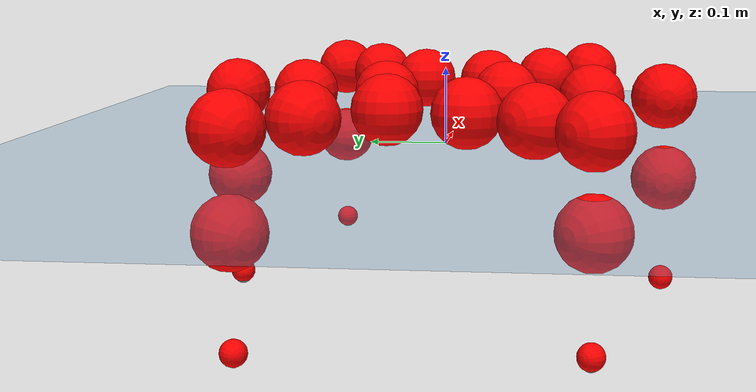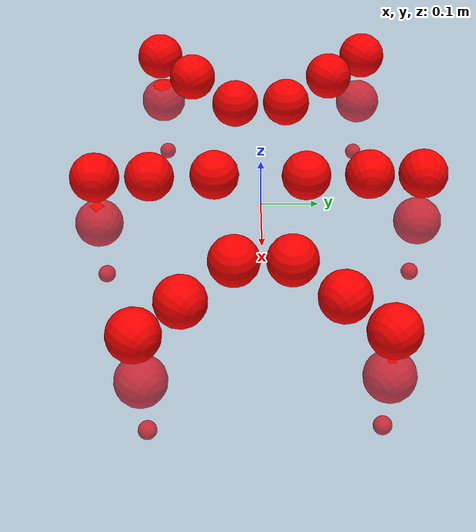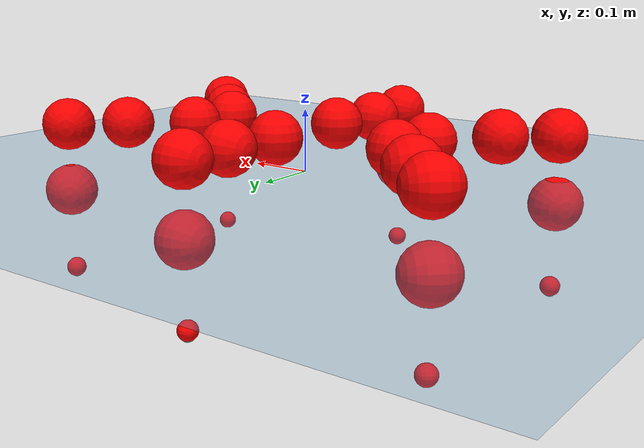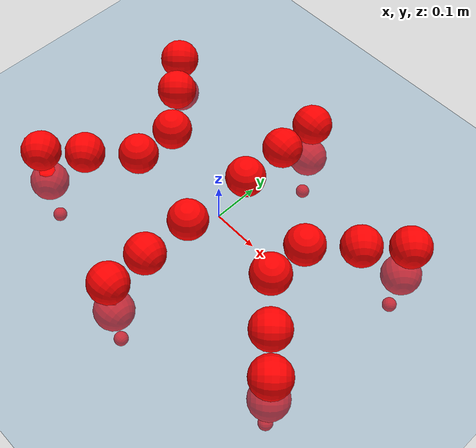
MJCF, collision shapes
<mujoco model="Golem">
  <compiler angle="radian" assetdir="assets" balanceinertia="true" inertiafromgeom="false"/>

  <option timestep="0.005" density="1.2" viscosity="2e-05"/>

  <size nkey="1"/>

  <visual>
    <quality shadowsize="8192"/>
    <map shadowclip="0.5"/>
  </visual>

  <default>
    <default class="/">
      <joint armature="0.01" damping="0.01" frictionloss="0.01"/>
      <geom contype="0" conaffinity="0" group="1" solref="-1000 -80"/>
      <site size="0.01 0.005 0.005" group="5"/>
      <general forcelimited="true" biastype="affine" gainprm="25" biasprm="0 -25 -0.5"/>
      <default class="visual">
        <geom type="mesh" group="2"/>
      </default>
      <default class="collision">
        <geom group="3"/>
      </default>
      <default class="foot">
        <geom size="0.01 0 0" condim="6" group="4" priority="1" solimp="0.015 1 0.01"/>
      </default>
      <default class="reward_collision_sphere">
        <geom group="5" rgba="1 0 0 1"/>
      </default>
    </default>
  </default>

  <asset>
    <texture type="skybox" colorspace="auto" name="//unnamed_texture_0" builtin="gradient" rgb1="0.95 0.95 0.95" rgb2="0.95 0.95 0.95" width="100" height="600"/>
    <texture type="2d" colorspace="auto" name="texplane" builtin="checker" rgb1="0.345 0.575 0.748" rgb2="0.345 0.575 0.748" markrgb="1 1 1" width="512" height="512"/>
    <material name="MatPlane" class="/" texture="texplane" texuniform="true" texrepeat="2 2" specular="0.9"/>
    <mesh name="body" class="/" file="body.stl" scale="0.001 0.001 0.001"/>
    <mesh name="coxa" class="/" file="coxa.stl" scale="0.001 0.001 0.001"/>
    <mesh name="femur" class="/" file="femur.stl" scale="0.001 0.001 0.001"/>
    <mesh name="tibia" class="/" file="tibia.stl" scale="0.001 0.001 0.001"/>
    <mesh name="tarsus" class="/" file="tarsus.stl" scale="0.001 0.001 0.001"/>
  </asset>

  <worldbody>
    <geom name="floor" class="/" size="100 100 0.125" type="plane" group="0" material="MatPlane"/>
    <light name="toplight_shadow" class="/" pos="0 0 5" dir="0.0990148 0.0990148 -0.990148" type="directional" ambient="0.04 0.04 0.04" diffuse="0.55 0.55 0.55" specular="0.12 0.12 0.12"/>
    <light name="toplight_fill" class="/" pos="0 0 5" dir="0.0990148 0.0990148 -0.990148" type="directional" castshadow="false" ambient="0.04 0.04 0.04" diffuse="0.3 0.3 0.3" specular="0.08 0.08 0.08"/>
    <body name="trunk" pos="-0.00154876 9.83856e-05 -0.000485731" quat="1 0.000221693 2.54693e-06 -0.000357469">
      <inertial pos="0.001111 0.000771447 -0.00483404" quat="0.999913 -0.00443007 -0.00713403 -0.0102145" mass="4.39398" diaginertia="0.0315557 0.00515222 0.0129145"/>
      <joint name="//unnamed_joint_0" type="free"/>
      <geom name="//unnamed_geom_1" class="/" pos="0 0 0.0674514" quat="1 0 0 0" type="mesh" rgba="0.9 0.9 0.9 1" mesh="body"/>
      <site name="imu" class="/" pos="0.163872 0.0037271 0.104219" size="0.0106232"/>
      <camera name="track" class="/" pos="0 -1.7545 0" quat="0.707107 0.707107 0 0" mode="trackcom"/>
      <camera name="ego_camera" class="/" pos="0.16325 0 0.105393" quat="-0.5 -0.5 0.5 0.5"/>
      <body name="coxa_RR" pos="-0.223341 -0.0706894 0.0670432" quat="0.382723 1.9902e-05 0.000319877 -0.923863">
        <inertial pos="0.000545588 -0.000237851 0.000469386" quat="0.99998 0.00419528 -0.00313748 -0.00363075" mass="0.234491" diaginertia="0.031399 0.00503334 0.0127136"/>
        <joint name="coxa_joint_RR" class="/" pos="0 0 0" axis="-0.000917645 -0.000174592 -1" range="-3.13756 3.19191" armature="0.0105191" damping="0.0141001" frictionloss="0.0101811"/>
        <geom name="//unnamed_geom_2" class="/" type="mesh" rgba="0.2 0.2 0.2 1" mesh="coxa"/>
        <geom name="//unnamed_geom_3" class="reward_collision_sphere" size="0.0424927" pos="-0.0376732 0 0"/>
        <body name="femur_RR" pos="0.0744583 0.00231014 0.00263793" quat="0.50009 -0.500147 0.499629 0.500134">
          <inertial pos="0.000300787 0.00258106 0.0026408" quat="0.999987 -0.00185128 0.00423554 -0.00212255" mass="0.239787" diaginertia="0.0321815 0.00518461 0.0135217"/>
          <joint name="femur_joint_RR" class="/" pos="0 0 0" axis="-0.00114543 -0.00388967 -0.999992" range="-3.15883 3.13715" armature="0.0101802" damping="0.0138084" frictionloss="0.012033"/>
          <geom name="//unnamed_geom_4" class="/" type="mesh" rgba="0.9 0.9 0.9 1" mesh="femur"/>
          <geom name="//unnamed_geom_5" class="reward_collision_sphere" size="0.0424927"/>
          <body name="tibia_RR" pos="0.00065883 -0.0928479 -0.0024633" quat="2.04578e-05 1 3.34249e-05 8.90485e-05">
            <inertial pos="0.000624483 -0.00225432 0.000871919" quat="1 0.000304992 -0.000123927 -0.000391733" mass="0.238891" diaginertia="0.0312718 0.00520127 0.0129638"/>
            <joint name="tibia_joint_RR" class="/" pos="0 0 0" axis="-0.00101896 0.0002931 0.999999" range="-3.14073 3.13652" armature="0.0104756" damping="0.0197463" frictionloss="0.00997081"/>
            <geom name="//unnamed_geom_6" class="/" type="mesh" rgba="0.2 0.2 0.2 1" mesh="tibia"/>
            <geom name="//unnamed_geom_7" class="reward_collision_sphere" size="0.0424927"/>
            <body name="tarsus_RR" pos="0.107522 0.00063519 0.000196782" quat="1 -1.53367e-05 -3.47962e-05 5.54161e-05">
              <inertial pos="0.0746416 -0.000395563 -0.00015933" quat="0.500206 0.502898 0.497692 0.49919" mass="0.246616" diaginertia="0.0323965 0.00528807 0.0129205"/>
              <joint name="tarsus_joint_RR" class="/" pos="0 0 0" axis="0.00162162 0.000299971 0.999999" range="-3.19297 3.19098" armature="0.010778" damping="0.00277688" frictionloss="0.0108865"/>
              <geom name="//unnamed_geom_8" class="/" type="mesh" rgba="0.9 0.9 0.9 1" mesh="tarsus"/>
              <geom name="foot_1" class="foot" size="0.0112227" pos="0.140647 0 0" quat="0 -0.707107 0 0.707107"/>
              <geom name="//unnamed_geom_10" class="reward_collision_sphere" size="0.0424927"/>
              <geom name="//unnamed_geom_11" class="reward_collision_sphere" size="0.0159347" pos="0.134996 0 0"/>
              <site name="foot_1" class="foot" pos="0.140647 0 0" quat="0 -0.707107 0 0.707107" size="0.0106232"/>
            </body>
          </body>
        </body>
      </body>
      <body name="coxa_RM" pos="-0.00274762 -0.117341 0.0678863" quat="0.707113 3.04008e-05 1.63916e-06 -0.707101">
        <inertial pos="0.000340868 -0.00087539 0.0011653" quat="0.99991 -0.00809999 0.00342406 -0.0100921" mass="0.244398" diaginertia="0.0317064 0.00519253 0.0132949"/>
        <joint name="coxa_joint_RM" class="/" pos="0 0 0" axis="0.00329838 0.00179645 -0.999993" range="-3.11946 3.12267" armature="0.0104484" damping="0.00739979" frictionloss="0.0108596"/>
        <geom name="//unnamed_geom_12" class="/" type="mesh" rgba="0.2 0.2 0.2 1" mesh="coxa"/>
        <geom name="//unnamed_geom_13" class="reward_collision_sphere" size="0.0424927" pos="-0.0376732 0 0"/>
        <body name="femur_RM" pos="0.0736884 -0.000490904 -0.00327613" quat="0.50093 -0.500257 0.499344 0.499467">
          <inertial pos="-0.00268256 -0.000943817 -0.002655" quat="0.999999 -0.000900232 0.000787207 -0.000140554" mass="0.247302" diaginertia="0.0314421 0.00521332 0.0130446"/>
          <joint name="femur_joint_RM" class="/" pos="0 0 0" axis="0.00291492 0.00208587 -0.999994" range="-3.16099 3.19178" armature="0.010389" damping="0.0130795" frictionloss="0.00927397"/>
          <geom name="//unnamed_geom_14" class="/" type="mesh" rgba="0.9 0.9 0.9 1" mesh="femur"/>
          <geom name="//unnamed_geom_15" class="reward_collision_sphere" size="0.0424927"/>
          <body name="tibia_RM" pos="-0.00157886 -0.0932132 0.00243113" quat="-0.000114488 1 4.95209e-05 -0.00011698">
            <inertial pos="-0.000232609 -0.00131056 -1.97024e-05" quat="1 -0.000201635 0.000119914 0.000305111" mass="0.239188" diaginertia="0.0316793 0.00522491 0.0128622"/>
            <joint name="tibia_joint_RM" class="/" pos="0 0 0" axis="-0.0124215 0.00188069 0.999921" stiffness="7.09602e-05" range="-3.14949 3.08992" armature="0.0111304" damping="0" frictionloss="0.0106341"/>
            <geom name="//unnamed_geom_16" class="/" type="mesh" rgba="0.2 0.2 0.2 1" mesh="tibia"/>
            <geom name="//unnamed_geom_17" class="reward_collision_sphere" size="0.0424927"/>
            <body name="tarsus_RM" pos="0.107276 0.00216251 -0.00233061" quat="1 3.82516e-05 0.000379407 4.53656e-05">
              <inertial pos="0.0765854 0.000586371 0.00182805" quat="0.501051 0.507461 0.496936 0.494455" mass="0.238008" diaginertia="0.0314101 0.00515594 0.012455"/>
              <joint name="tarsus_joint_RM" class="/" pos="0 0 0" axis="-0.0026036 0.00114579 0.999996" range="-3.18929 3.08506" armature="0.0105525" damping="0.00414767" frictionloss="0.0111838"/>
              <geom name="//unnamed_geom_18" class="/" type="mesh" rgba="0.9 0.9 0.9 1" mesh="tarsus"/>
              <geom name="foot_2" class="foot" size="0.0103813" pos="0.140647 0 0" quat="0 -0.707107 0 0.707107"/>
              <geom name="//unnamed_geom_20" class="reward_collision_sphere" size="0.0424927"/>
              <geom name="//unnamed_geom_21" class="reward_collision_sphere" size="0.0159347" pos="0.134996 0 0"/>
              <site name="foot_2" class="foot" pos="0.140647 0 0" quat="0 -0.707107 0 0.707107" size="0.0106232"/>
            </body>
          </body>
        </body>
      </body>
      <body name="coxa_RF" pos="0.221927 -0.072581 0.0658205" quat="0.923892 0.000216415 -9.83764e-05 -0.382653">
        <inertial pos="-0.000296445 -0.00260029 -0.000745876" quat="0.999989 -0.000358184 -0.00339185 -0.00328392" mass="0.245467" diaginertia="0.0318762 0.0051871 0.0129771"/>
        <joint name="coxa_joint_RF" class="/" pos="0 0 0" axis="0.000292275 -0.00160834 -0.999999" range="-3.13986 3.17083" armature="0.0107163" damping="0" frictionloss="0.0107021"/>
        <geom name="//unnamed_geom_22" class="/" type="mesh" rgba="0.2 0.2 0.2 1" mesh="coxa"/>
        <geom name="//unnamed_geom_23" class="reward_collision_sphere" size="0.0424927" pos="-0.0376732 0 0"/>
        <body name="femur_RF" pos="0.0768026 -0.000598085 -0.00258312" quat="0.500067 -0.500005 0.499999 0.499929">
          <inertial pos="-0.000636232 -0.000181718 0.0022683" quat="0.999987 -0.00204101 0.00302778 -0.00346219" mass="0.235988" diaginertia="0.0314487 0.00506382 0.0130205"/>
          <joint name="femur_joint_RF" class="/" pos="0 0 0" axis="-0.000752846 0.00133885 -0.999999" range="-3.08727 3.11776" armature="0.0104191" damping="0.0110713" frictionloss="0.00962183"/>
          <geom name="//unnamed_geom_24" class="/" type="mesh" rgba="0.9 0.9 0.9 1" mesh="femur"/>
          <geom name="//unnamed_geom_25" class="reward_collision_sphere" size="0.0424927"/>
          <body name="tibia_RF" pos="-0.00296017 -0.0936947 -0.000324893" quat="5.32133e-05 1 0.000132297 1.36541e-05">
            <inertial pos="0.00177304 -0.000190544 -6.82823e-05" quat="0.99991 -0.00926934 -0.00866038 -0.00426786" mass="0.245139" diaginertia="0.0306244 0.00514819 0.0131006"/>
            <joint name="tibia_joint_RF" class="/" pos="0 0 0" axis="-0.00723685 0.00432058 0.999964" range="-3.1406 3.13629" armature="0.010101" damping="0.00409536" frictionloss="0.0105276"/>
            <geom name="//unnamed_geom_26" class="/" type="mesh" rgba="0.2 0.2 0.2 1" mesh="tibia"/>
            <geom name="//unnamed_geom_27" class="reward_collision_sphere" size="0.0424927"/>
            <body name="tarsus_RF" pos="0.111883 -0.00111685 -0.00221397" quat="1 0.00029586 -0.000139878 -0.000248685">
              <inertial pos="0.0755281 -0.00240778 -0.000483101" quat="0.503375 0.4999 0.498171 0.498538" mass="0.231097" diaginertia="0.031013 0.00503543 0.0130402"/>
              <joint name="tarsus_joint_RF" class="/" pos="0 0 0" axis="0.00919724 0.00949896 0.999913" range="-3.18013 3.13828" armature="0.0106766" damping="0.0202866" frictionloss="0.0111212"/>
              <geom name="//unnamed_geom_28" class="/" type="mesh" rgba="0.9 0.9 0.9 1" mesh="tarsus"/>
              <geom name="foot_3" class="foot" size="0.0102409" pos="0.140647 0 0" quat="0 -0.707107 0 0.707107"/>
              <geom name="//unnamed_geom_30" class="reward_collision_sphere" size="0.0424927"/>
              <geom name="//unnamed_geom_31" class="reward_collision_sphere" size="0.0159347" pos="0.134996 0 0"/>
              <site name="foot_3" class="foot" pos="0.140647 0 0" quat="0 -0.707107 0 0.707107" size="0.0106232"/>
            </body>
          </body>
        </body>
      </body>
      <body name="coxa_LR" pos="-0.222554 0.0760043 0.0697565" quat="0.382711 -1.49884e-05 -5.93383e-05 0.923868">
        <inertial pos="0.000897982 0.000624028 0.00287377" quat="1 -8.38364e-05 -2.37897e-05 -5.28112e-05" mass="0.240654" diaginertia="0.0308923 0.00513175 0.0124604"/>
        <joint name="coxa_joint_LR" class="/" pos="0 0 0" axis="-0.00259145 -0.000158792 -0.999997" range="-3.14298 3.12421" armature="0.0107383" damping="0" frictionloss="0.00921092"/>
        <geom name="//unnamed_geom_32" class="/" type="mesh" rgba="0.2 0.2 0.2 1" mesh="coxa"/>
        <geom name="//unnamed_geom_33" class="reward_collision_sphere" size="0.0424927" pos="-0.0376732 0 0"/>
        <body name="femur_LR" pos="0.0758805 -0.00323357 -0.000227364" quat="0.500438 -0.500002 0.499829 0.499731">
          <inertial pos="0.00245748 -0.000156008 0.00168681" quat="0.999995 0.00242433 0.000659697 0.0019109" mass="0.231292" diaginertia="0.0310103 0.00517396 0.0130145"/>
          <joint name="femur_joint_LR" class="/" pos="0 0 0" axis="0.00243274 -0.00322079 0.999992" range="-3.19371 3.08682" armature="0.0092414" damping="0" frictionloss="0.0107831"/>
          <geom name="//unnamed_geom_34" class="/" type="mesh" rgba="0.9 0.9 0.9 1" mesh="femur"/>
          <geom name="//unnamed_geom_35" class="reward_collision_sphere" size="0.0424927"/>
          <body name="tibia_LR" pos="0.00250499 -0.0959837 -0.000623945" quat="-0.000174322 1 -8.62747e-05 0.000102052">
            <inertial pos="0.00031945 -0.0022761 0.000170698" quat="0.999999 -0.00022777 0.00135591 0.000315987" mass="0.244538" diaginertia="0.0306138 0.00531429 0.0127176"/>
            <joint name="tibia_joint_LR" class="/" pos="0 0 0" axis="-0.00546706 -0.0124416 -0.999908" range="-3.15312 3.09158" armature="0.0110007" damping="0.00192068" frictionloss="0.0105753"/>
            <geom name="//unnamed_geom_36" class="/" type="mesh" rgba="0.2 0.2 0.2 1" mesh="tibia"/>
            <geom name="//unnamed_geom_37" class="reward_collision_sphere" size="0.0424927"/>
            <body name="tarsus_LR" pos="0.113631 0.000145028 -0.00122044" quat="0.999999 -0.000661085 0.000157928 0.00116627">
              <inertial pos="0.0737542 -0.00186095 0.00109092" quat="0.500155 0.500107 0.499531 0.500208" mass="0.241416" diaginertia="0.0312274 0.00503554 0.013153"/>
              <joint name="tarsus_joint_LR" class="/" pos="0 0 0" axis="0.000114174 0.000140237 -1" range="-3.1493 3.15027" armature="0.0105091" damping="0.0266057" frictionloss="0.0119687"/>
              <geom name="//unnamed_geom_38" class="/" type="mesh" rgba="0.9 0.9 0.9 1" mesh="tarsus"/>
              <geom name="foot_4" class="foot" size="0.0107289" pos="0.140647 0 0" quat="0.707107 0 -0.707107 0"/>
              <geom name="//unnamed_geom_40" class="reward_collision_sphere" size="0.0424927"/>
              <geom name="//unnamed_geom_41" class="reward_collision_sphere" size="0.0159347" pos="0.134996 0 0"/>
              <site name="foot_4" class="foot" pos="0.140647 0 0" quat="0.707107 0 -0.707107 0" size="0.0106232"/>
            </body>
          </body>
        </body>
      </body>
      <body name="coxa_LM" pos="3.06231e-05 0.115449 0.066704" quat="0.707077 -0.000367738 0.000277887 0.707136">
        <inertial pos="0.0027867 9.59712e-05 -6.28695e-05" quat="0.999995 -0.00206121 0.00106359 -0.00217068" mass="0.232404" diaginertia="0.031261 0.00504149 0.0127684"/>
        <joint name="coxa_joint_LM" class="/" pos="0 0 0" axis="0.00235612 0.00181586 -0.999996" range="-3.14569 3.13571" armature="0.0109111" damping="0" frictionloss="0.0100498"/>
        <geom name="//unnamed_geom_42" class="/" type="mesh" rgba="0.2 0.2 0.2 1" mesh="coxa"/>
        <geom name="//unnamed_geom_43" class="reward_collision_sphere" size="0.0424927" pos="-0.0376732 0 0"/>
        <body name="femur_LM" pos="0.0706332 0.000215291 0.00139881" quat="0.499933 -0.500124 0.499944 0.499998">
          <inertial pos="0.00119925 -0.00052343 -0.000702486" quat="0.999991 0.00392059 -0.00136671 0.000204448" mass="0.246535" diaginertia="0.0308118 0.0052899 0.0136663"/>
          <joint name="femur_joint_LM" class="/" pos="0 0 0" axis="0.0130597 0.00829135 0.99988" range="-3.08744 3.13579" armature="0.0113155" damping="0.000933047" frictionloss="0.010617"/>
          <geom name="//unnamed_geom_44" class="/" type="mesh" rgba="0.9 0.9 0.9 1" mesh="femur"/>
          <geom name="//unnamed_geom_45" class="reward_collision_sphere" size="0.0424927"/>
          <body name="tibia_LM" pos="-0.000238931 -0.0917071 2.80604e-05" quat="-0.000208844 1 -3.67685e-05 -7.48377e-05">
            <inertial pos="-0.00261435 0.000321706 -0.000127797" quat="0.999992 -0.0035167 0.0017511 0.00118313" mass="0.237875" diaginertia="0.0314358 0.00525489 0.0132042"/>
            <joint name="tibia_joint_LM" class="/" pos="0 0 0" axis="0.000880696 0.000317797 -1" stiffness="0.00548878" range="-3.1602 3.13739" armature="0.00973878" damping="0.0046433" frictionloss="0.00924351"/>
            <geom name="//unnamed_geom_46" class="/" type="mesh" rgba="0.2 0.2 0.2 1" mesh="tibia"/>
            <geom name="//unnamed_geom_47" class="reward_collision_sphere" size="0.0424927"/>
            <body name="tarsus_LM" pos="0.113785 0.00116144 0.000158476" quat="1 -0.000309858 0.000201583 -7.73472e-05">
              <inertial pos="0.0733582 -0.000185104 -0.00117872" quat="0.507378 0.492628 0.495907 0.503945" mass="0.23706" diaginertia="0.0304531 0.00519487 0.0127193"/>
              <joint name="tarsus_joint_LM" class="/" pos="0 0 0" axis="-0.00696333 -0.00624858 -0.999956" stiffness="0.00267402" range="-3.10037 3.13872" armature="0.0102055" damping="0.0134048" frictionloss="0.0106138"/>
              <geom name="//unnamed_geom_48" class="/" type="mesh" rgba="0.9 0.9 0.9 1" mesh="tarsus"/>
              <geom name="foot_5" class="foot" size="0.0117371" pos="0.140647 0 0" quat="0.707107 0 -0.707107 0"/>
              <geom name="//unnamed_geom_50" class="reward_collision_sphere" size="0.0424927"/>
              <geom name="//unnamed_geom_51" class="reward_collision_sphere" size="0.0159347" pos="0.134996 0 0"/>
              <site name="foot_5" class="foot" pos="0.140647 0 0" quat="0.707107 0 -0.707107 0" size="0.0106232"/>
            </body>
          </body>
        </body>
      </body>
      <body name="coxa_LF" pos="0.222808 0.0738515 0.0666925" quat="0.923924 -2.03866e-05 -3.16708e-05 0.382576">
        <inertial pos="2.66028e-05 -0.00254149 0.000368743" quat="0.99992 -0.00906645 -0.00726779 0.00499829" mass="0.244661" diaginertia="0.0320355 0.00543716 0.0135944"/>
        <joint name="coxa_joint_LF" class="/" pos="0 0 0" axis="-0.000929551 7.24509e-05 -1" range="-3.10213 3.1378" armature="0.0109235" damping="0.011135" frictionloss="0.00940005"/>
        <geom name="//unnamed_geom_52" class="/" type="mesh" rgba="0.2 0.2 0.2 1" mesh="coxa"/>
        <geom name="//unnamed_geom_53" class="reward_collision_sphere" size="0.0424927" pos="-0.0376732 0 0"/>
        <body name="femur_LF" pos="0.0718041 -0.000618769 0.00179673" quat="0.499665 -0.499981 0.500083 0.500272">
          <inertial pos="-0.000135003 0.00115764 -0.00247828" quat="0.999986 0.000642061 0.00431973 0.00304958" mass="0.242936" diaginertia="0.0313341 0.00527047 0.0128288"/>
          <joint name="femur_joint_LF" class="/" pos="0 0 0" axis="0.000739133 0.00361471 0.999993" range="-3.11953 3.13968" armature="0.011396" damping="0.00358387" frictionloss="0.0105258"/>
          <geom name="//unnamed_geom_54" class="/" type="mesh" rgba="0.9 0.9 0.9 1" mesh="femur"/>
          <geom name="//unnamed_geom_55" class="reward_collision_sphere" size="0.0424927"/>
          <body name="tibia_LF" pos="0.000156136 -0.0959848 0.00064919" quat="-0.000151656 1 -0.000295013 -3.0534e-05">
            <inertial pos="0.00258062 0.00277321 0.00260583" quat="0.999993 -0.00199103 0.00119114 -0.00293417" mass="0.24126" diaginertia="0.0315619 0.00531261 0.0135231"/>
            <joint name="tibia_joint_LF" class="/" pos="0 0 0" axis="0.00246034 0.000842814 -0.999997" stiffness="0.00276916" range="-3.10836 3.08619" armature="0.0111754" damping="0.004083" frictionloss="0.00993373"/>
            <geom name="//unnamed_geom_56" class="/" type="mesh" rgba="0.2 0.2 0.2 1" mesh="tibia"/>
            <geom name="//unnamed_geom_57" class="reward_collision_sphere" size="0.0424927"/>
            <body name="tarsus_LF" pos="0.110006 0.0014367 -0.000899452" quat="1 7.13567e-05 1.7415e-05 7.58387e-06">
              <inertial pos="0.0744581 0.00112051 0.0025602" quat="0.503081 0.492134 0.497402 0.507253" mass="0.242349" diaginertia="0.0324364 0.00520977 0.0135244"/>
              <joint name="tarsus_joint_LF" class="/" pos="0 0 0" axis="0.0017798 0.00103456 -0.999998" stiffness="0.00116182" range="-3.18688 3.08518" armature="0.0110593" damping="0.0170324" frictionloss="0.0110425"/>
              <geom name="//unnamed_geom_58" class="/" type="mesh" rgba="0.9 0.9 0.9 1" mesh="tarsus"/>
              <geom name="foot_6" class="foot" size="0.0110792" pos="0.140647 0 0" quat="0.707107 0 -0.707107 0"/>
              <geom name="//unnamed_geom_60" class="reward_collision_sphere" size="0.0424927"/>
              <geom name="//unnamed_geom_61" class="reward_collision_sphere" size="0.0159347" pos="0.134996 0 0"/>
              <site name="foot_6" class="foot" pos="0.140647 0 0" quat="0.707107 0 -0.707107 0" size="0.0106232"/>
            </body>
          </body>
        </body>
      </body>
    </body>
  </worldbody>

  <contact>
    <pair class="/" geom1="floor" geom2="foot_1" name="//unnamed_contact_0"/>
    <pair class="/" geom1="floor" geom2="foot_2" name="//unnamed_contact_1"/>
    <pair class="/" geom1="floor" geom2="foot_3" name="//unnamed_contact_2"/>
    <pair class="/" geom1="floor" geom2="foot_4" name="//unnamed_contact_3"/>
    <pair class="/" geom1="floor" geom2="foot_5" name="//unnamed_contact_4"/>
    <pair class="/" geom1="floor" geom2="foot_6" name="//unnamed_contact_5"/>
  </contact>

  <actuator>
    <general name="coxa_joint_RR" class="/" joint="coxa_joint_RR" forcerange="-8.06484 8.06484" gainprm="27.1217" biasprm="0 -27.1217 -0.560492"/>
    <general name="femur_joint_RR" class="/" joint="femur_joint_RR" forcerange="-7.78169 7.78169" gainprm="27.1217" biasprm="0 -27.1217 -0.560492"/>
    <general name="tibia_joint_RR" class="/" joint="tibia_joint_RR" forcerange="-7.71042 7.71042" gainprm="27.1217" biasprm="0 -27.1217 -0.560492"/>
    <general name="tarsus_joint_RR" class="/" joint="tarsus_joint_RR" forcerange="-7.78812 7.78812" gainprm="27.1217" biasprm="0 -27.1217 -0.560492"/>
    <general name="coxa_joint_RM" class="/" joint="coxa_joint_RM" forcerange="-7.70172 7.70172" gainprm="27.1217" biasprm="0 -27.1217 -0.560492"/>
    <general name="femur_joint_RM" class="/" joint="femur_joint_RM" forcerange="-7.7868 7.7868" gainprm="27.1217" biasprm="0 -27.1217 -0.560492"/>
    <general name="tibia_joint_RM" class="/" joint="tibia_joint_RM" forcerange="-7.69442 7.69442" gainprm="27.1217" biasprm="0 -27.1217 -0.560492"/>
    <general name="tarsus_joint_RM" class="/" joint="tarsus_joint_RM" forcerange="-7.18306 7.18306" gainprm="27.1217" biasprm="0 -27.1217 -0.560492"/>
    <general name="coxa_joint_RF" class="/" joint="coxa_joint_RF" forcerange="-7.67345 7.67345" gainprm="27.1217" biasprm="0 -27.1217 -0.560492"/>
    <general name="femur_joint_RF" class="/" joint="femur_joint_RF" forcerange="-7.72673 7.72673" gainprm="27.1217" biasprm="0 -27.1217 -0.560492"/>
    <general name="tibia_joint_RF" class="/" joint="tibia_joint_RF" forcerange="-7.76025 7.76025" gainprm="27.1217" biasprm="0 -27.1217 -0.560492"/>
    <general name="tarsus_joint_RF" class="/" joint="tarsus_joint_RF" forcerange="-8.0597 8.0597" gainprm="27.1217" biasprm="0 -27.1217 -0.560492"/>
    <general name="coxa_joint_LR" class="/" joint="coxa_joint_LR" forcerange="-7.95435 7.95435" gainprm="27.1217" biasprm="0 -27.1217 -0.560492"/>
    <general name="femur_joint_LR" class="/" joint="femur_joint_LR" forcerange="-7.0572 7.0572" gainprm="27.1217" biasprm="0 -27.1217 -0.560492"/>
    <general name="tibia_joint_LR" class="/" joint="tibia_joint_LR" forcerange="-7.53409 7.53409" gainprm="27.1217" biasprm="0 -27.1217 -0.560492"/>
    <general name="tarsus_joint_LR" class="/" joint="tarsus_joint_LR" forcerange="-7.71019 7.71019" gainprm="27.1217" biasprm="0 -27.1217 -0.560492"/>
    <general name="coxa_joint_LM" class="/" joint="coxa_joint_LM" forcerange="-7.67273 7.67273" gainprm="27.1217" biasprm="0 -27.1217 -0.560492"/>
    <general name="femur_joint_LM" class="/" joint="femur_joint_LM" forcerange="-7.68662 7.68662" gainprm="27.1217" biasprm="0 -27.1217 -0.560492"/>
    <general name="tibia_joint_LM" class="/" joint="tibia_joint_LM" forcerange="-7.78269 7.78269" gainprm="27.1217" biasprm="0 -27.1217 -0.560492"/>
    <general name="tarsus_joint_LM" class="/" joint="tarsus_joint_LM" forcerange="-8.02073 8.02073" gainprm="27.1217" biasprm="0 -27.1217 -0.560492"/>
    <general name="coxa_joint_LF" class="/" joint="coxa_joint_LF" forcerange="-8.01122 8.01122" gainprm="27.1217" biasprm="0 -27.1217 -0.560492"/>
    <general name="femur_joint_LF" class="/" joint="femur_joint_LF" forcerange="-8.28229 8.28229" gainprm="27.1217" biasprm="0 -27.1217 -0.560492"/>
    <general name="tibia_joint_LF" class="/" joint="tibia_joint_LF" forcerange="-7.75032 7.75032" gainprm="27.1217" biasprm="0 -27.1217 -0.560492"/>
    <general name="tarsus_joint_LF" class="/" joint="tarsus_joint_LF" forcerange="-6.99485 6.99485" gainprm="27.1217" biasprm="0 -27.1217 -0.560492"/>
  </actuator>

  <sensor>
    <gyro site="imu" name="imu_angular_velocity"/>
    <velocimeter site="imu" name="imu_linear_velocity"/>
    <framelinvel objtype="site" objname="foot_1" name="foot_1_global_linear_velocity"/>
    <framelinvel objtype="site" objname="foot_2" name="foot_2_global_linear_velocity"/>
    <framelinvel objtype="site" objname="foot_3" name="foot_3_global_linear_velocity"/>
    <framelinvel objtype="site" objname="foot_4" name="foot_4_global_linear_velocity"/>
    <framelinvel objtype="site" objname="foot_5" name="foot_5_global_linear_velocity"/>
    <framelinvel objtype="site" objname="foot_6" name="foot_6_global_linear_velocity"/>
  </sensor>

  <keyframe>
    <key name="home" qpos="0 0 0.1457 1 0 0 0 0 0 0 0 0 0 0 0 0 0 0 0 0 0 0 0 0 0 0 0 0 0 0 0"/>
  </keyframe>
</mujoco>
